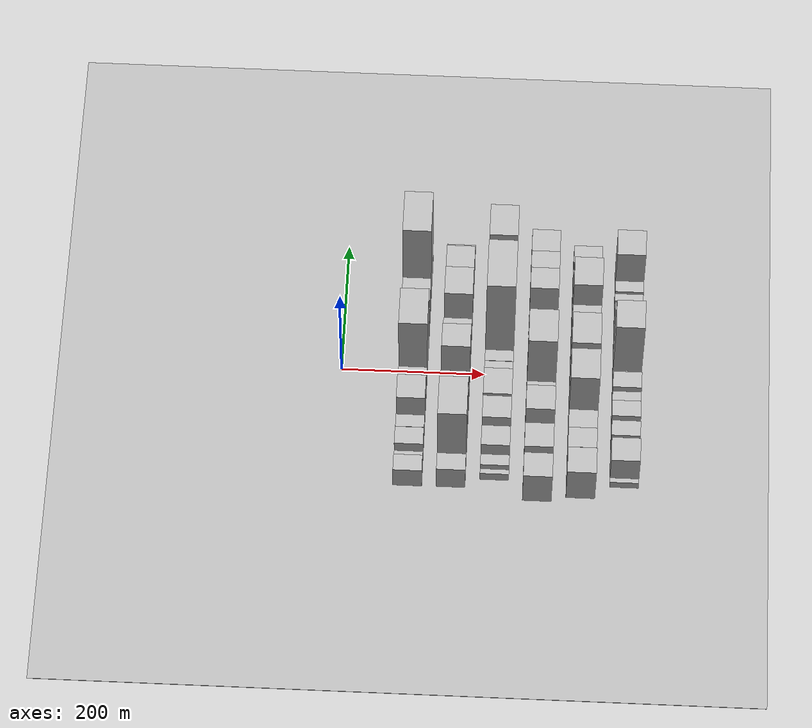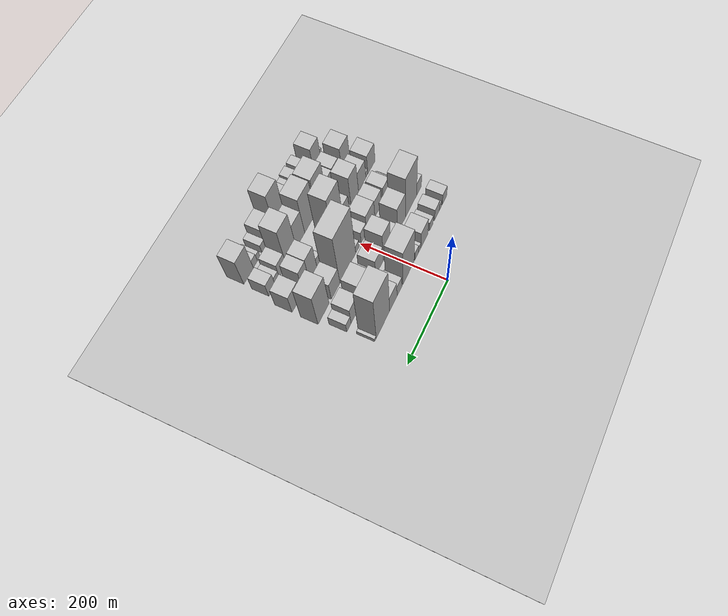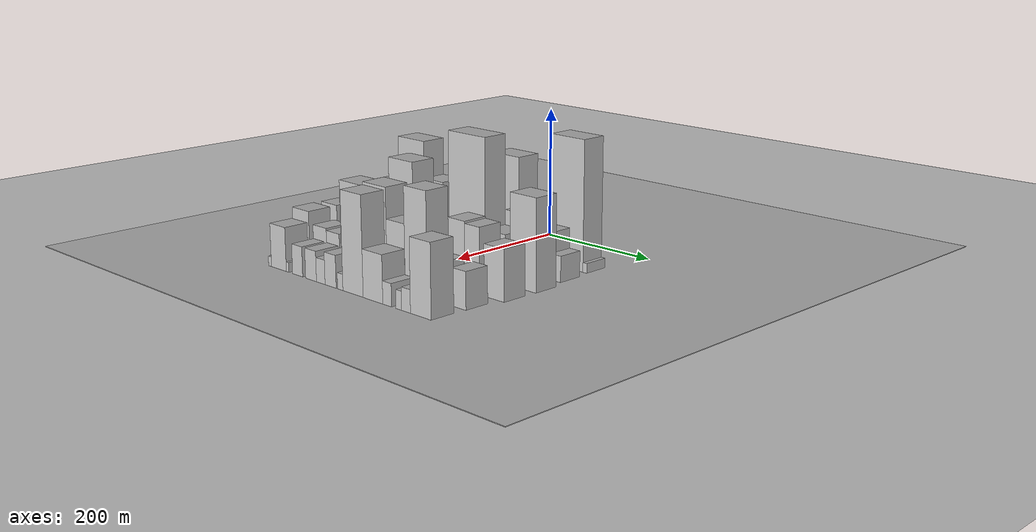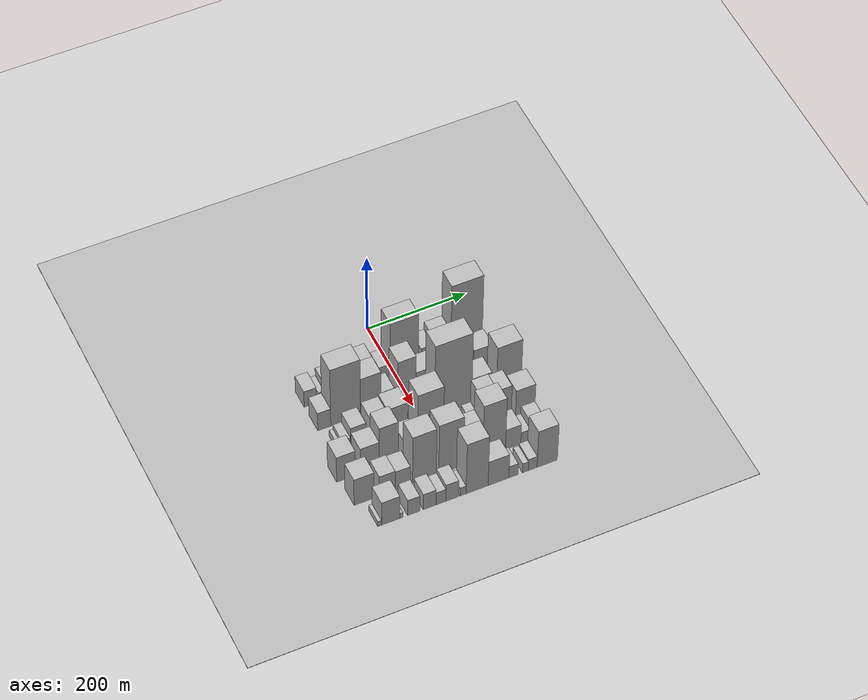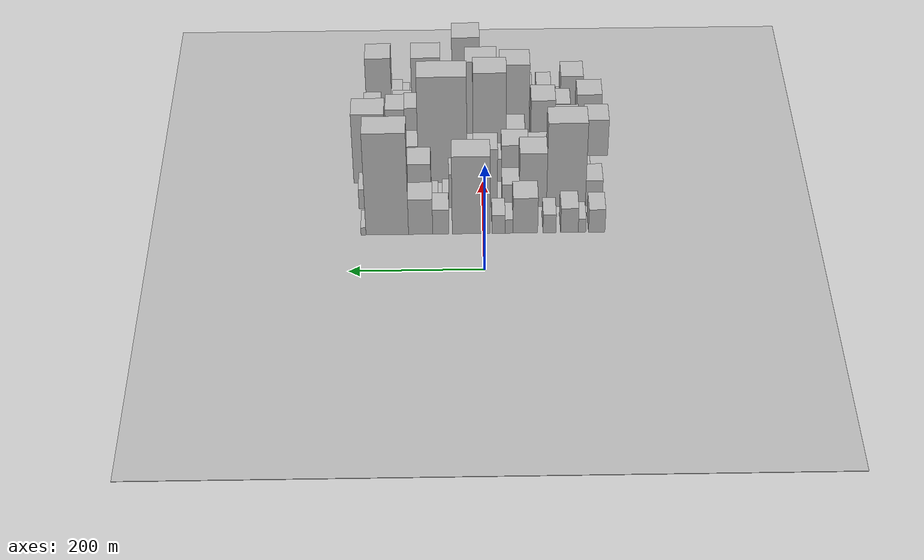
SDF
<sdf version="1.6">
 <world name="default">
  <include><name>ground_plane_1</name><uri>model://HANNAS_ground_plane</uri></include>
  <include>
   <name>ground_plane_2</name>
   <uri>model://HANNAS_ground_plane</uri>
   <pose>100 0 0  0 0 0</pose>
  </include>
  <model name="building_26">
   <static>1</static>
   <pose>100.0000 -169.0179 0 0.000000 0.000000 0.000000</pose>
   <link name="link">
    <pose>0 0 22.50 0 0 0</pose>
    <collision name="collision"><geometry><box><size>40.0000 24.7308 45.0000</size></box></geometry></collision>
    <visual name="visual">
     <cast_shadows>0</cast_shadows>
     <geometry><box><size>40.0000 24.7308 45.0000</size></box></geometry>
     <material>
      <script>
       <uri>model://HANNAS_wall/materials/scripts</uri>
       <uri>model://HANNAS_wall/materials/textures</uri>
       <name>vrc/HANNAS_wall</name>
      </script>
     </material>
    </visual>
   </link>
  </model>
  <model name="building_27">
   <static>1</static>
   <pose>100.0000 -146.9391 0 0.000000 0.000000 0.000000</pose>
   <link name="link">
    <pose>0 0 13.50 0 0 0</pose>
    <collision name="collision"><geometry><box><size>40.0000 11.4268 27.0000</size></box></geometry></collision>
    <visual name="visual">
     <cast_shadows>0</cast_shadows>
     <geometry><box><size>40.0000 11.4268 27.0000</size></box></geometry>
     <material>
      <script>
       <uri>model://HANNAS_wall/materials/scripts</uri>
       <uri>model://HANNAS_wall/materials/textures</uri>
       <name>vrc/HANNAS_wall</name>
      </script>
     </material>
    </visual>
   </link>
  </model>
  <model name="building_28">
   <static>1</static>
   <pose>100.0000 -128.0139 0 0.000000 0.000000 0.000000</pose>
   <link name="link">
    <pose>0 0 24.00 0 0 0</pose>
    <collision name="collision"><geometry><box><size>40.0000 26.4236 48.0000</size></box></geometry></collision>
    <visual name="visual">
     <cast_shadows>0</cast_shadows>
     <geometry><box><size>40.0000 26.4236 48.0000</size></box></geometry>
     <material>
      <script>
       <uri>model://HANNAS_wall/materials/scripts</uri>
       <uri>model://HANNAS_wall/materials/textures</uri>
       <name>vrc/HANNAS_wall</name>
      </script>
     </material>
    </visual>
   </link>
  </model>
  <model name="building_29">
   <static>1</static>
   <pose>100.0000 -98.0934 0 0.000000 0.000000 0.000000</pose>
   <link name="link">
    <pose>0 0 18.00 0 0 0</pose>
    <collision name="collision"><geometry><box><size>40.0000 19.4174 36.0000</size></box></geometry></collision>
    <visual name="visual">
     <cast_shadows>0</cast_shadows>
     <geometry><box><size>40.0000 19.4174 36.0000</size></box></geometry>
     <material>
      <script>
       <uri>model://HANNAS_wall/materials/scripts</uri>
       <uri>model://HANNAS_wall/materials/textures</uri>
       <name>vrc/HANNAS_wall</name>
      </script>
     </material>
    </visual>
   </link>
  </model>
  <model name="building_30">
   <static>1</static>
   <pose>100.0000 -61.7897 0 0.000000 0.000000 0.000000</pose>
   <link name="link">
    <pose>0 0 34.50 0 0 0</pose>
    <collision name="collision"><geometry><box><size>40.0000 37.1900 69.0000</size></box></geometry></collision>
    <visual name="visual">
     <cast_shadows>0</cast_shadows>
     <geometry><box><size>40.0000 37.1900 69.0000</size></box></geometry>
     <material>
      <script>
       <uri>model://HANNAS_wall/materials/scripts</uri>
       <uri>model://HANNAS_wall/materials/textures</uri>
       <name>vrc/HANNAS_wall</name>
      </script>
     </material>
    </visual>
   </link>
  </model>
  <model name="building_31">
   <static>1</static>
   <pose>100.0000 -37.3304 0 0.000000 0.000000 0.000000</pose>
   <link name="link">
    <pose>0 0 13.50 0 0 0</pose>
    <collision name="collision"><geometry><box><size>40.0000 11.7286 27.0000</size></box></geometry></collision>
    <visual name="visual">
     <cast_shadows>0</cast_shadows>
     <geometry><box><size>40.0000 11.7286 27.0000</size></box></geometry>
     <material>
      <script>
       <uri>model://HANNAS_wall/materials/scripts</uri>
       <uri>model://HANNAS_wall/materials/textures</uri>
       <name>vrc/HANNAS_wall</name>
      </script>
     </material>
    </visual>
   </link>
  </model>
  <model name="building_32">
   <static>1</static>
   <pose>100.0000 -21.6655 0 0.000000 0.000000 0.000000</pose>
   <link name="link">
    <pose>0 0 18.00 0 0 0</pose>
    <collision name="collision"><geometry><box><size>40.0000 19.6011 36.0000</size></box></geometry></collision>
    <visual name="visual">
     <cast_shadows>0</cast_shadows>
     <geometry><box><size>40.0000 19.6011 36.0000</size></box></geometry>
     <material>
      <script>
       <uri>model://HANNAS_wall/materials/scripts</uri>
       <uri>model://HANNAS_wall/materials/textures</uri>
       <name>vrc/HANNAS_wall</name>
      </script>
     </material>
    </visual>
   </link>
  </model>
  <model name="building_33">
   <static>1</static>
   <pose>100.0000 19.4667 0 0.000000 0.000000 0.000000</pose>
   <link name="link">
    <pose>0 0 75.00 0 0 0</pose>
    <collision name="collision"><geometry><box><size>40.0000 56.6632 150.0000</size></box></geometry></collision>
    <visual name="visual">
     <cast_shadows>0</cast_shadows>
     <geometry><box><size>40.0000 56.6632 150.0000</size></box></geometry>
     <material>
      <script>
       <uri>model://HANNAS_wall/materials/scripts</uri>
       <uri>model://HANNAS_wall/materials/textures</uri>
       <name>vrc/HANNAS_wall</name>
      </script>
     </material>
    </visual>
   </link>
  </model>
  <model name="building_34">
   <static>1</static>
   <pose>100.0000 64.9660 0 0.000000 0.000000 0.000000</pose>
   <link name="link">
    <pose>0 0 24.00 0 0 0</pose>
    <collision name="collision"><geometry><box><size>40.0000 24.3354 48.0000</size></box></geometry></collision>
    <visual name="visual">
     <cast_shadows>0</cast_shadows>
     <geometry><box><size>40.0000 24.3354 48.0000</size></box></geometry>
     <material>
      <script>
       <uri>model://HANNAS_wall/materials/scripts</uri>
       <uri>model://HANNAS_wall/materials/textures</uri>
       <name>vrc/HANNAS_wall</name>
      </script>
     </material>
    </visual>
   </link>
  </model>
  <model name="building_35">
   <static>1</static>
   <pose>100.0000 95.2352 0 0.000000 0.000000 0.000000</pose>
   <link name="link">
    <pose>0 0 34.50 0 0 0</pose>
    <collision name="collision"><geometry><box><size>40.0000 36.2030 69.0000</size></box></geometry></collision>
    <visual name="visual">
     <cast_shadows>0</cast_shadows>
     <geometry><box><size>40.0000 36.2030 69.0000</size></box></geometry>
     <material>
      <script>
       <uri>model://HANNAS_wall/materials/scripts</uri>
       <uri>model://HANNAS_wall/materials/textures</uri>
       <name>vrc/HANNAS_wall</name>
      </script>
     </material>
    </visual>
   </link>
  </model>
  <model name="building_36">
   <static>1</static>
   <pose>100.0000 145.2437 0 0.000000 0.000000 0.000000</pose>
   <link name="link">
    <pose>0 0 97.50 0 0 0</pose>
    <collision name="collision"><geometry><box><size>40.0000 63.8139 195.0000</size></box></geometry></collision>
    <visual name="visual">
     <cast_shadows>0</cast_shadows>
     <geometry><box><size>40.0000 63.8139 195.0000</size></box></geometry>
     <material>
      <script>
       <uri>model://HANNAS_wall/materials/scripts</uri>
       <uri>model://HANNAS_wall/materials/textures</uri>
       <name>vrc/HANNAS_wall</name>
      </script>
     </material>
    </visual>
   </link>
  </model>
  <model name="building_37">
   <static>1</static>
   <pose>100.0000 180.8640 0 0.000000 0.000000 0.000000</pose>
   <link name="link">
    <pose>0 0 7.50 0 0 0</pose>
    <collision name="collision"><geometry><box><size>40.0000 7.4268 15.0000</size></box></geometry></collision>
    <visual name="visual">
     <cast_shadows>0</cast_shadows>
     <geometry><box><size>40.0000 7.4268 15.0000</size></box></geometry>
     <material>
      <script>
       <uri>model://HANNAS_wall/materials/scripts</uri>
       <uri>model://HANNAS_wall/materials/textures</uri>
       <name>vrc/HANNAS_wall</name>
      </script>
     </material>
    </visual>
   </link>
  </model>
  <model name="building_87">
   <static>1</static>
   <pose>160.0000 -168.0349 0 0.000000 0.000000 0.000000</pose>
   <link name="link">
    <pose>0 0 25.50 0 0 0</pose>
    <collision name="collision"><geometry><box><size>40.0000 25.6597 51.0000</size></box></geometry></collision>
    <visual name="visual">
     <cast_shadows>0</cast_shadows>
     <geometry><box><size>40.0000 25.6597 51.0000</size></box></geometry>
     <material>
      <script>
       <uri>model://HANNAS_wall/materials/scripts</uri>
       <uri>model://HANNAS_wall/materials/textures</uri>
       <name>vrc/HANNAS_wall</name>
      </script>
     </material>
    </visual>
   </link>
  </model>
  <model name="building_88">
   <static>1</static>
   <pose>160.0000 -125.6366 0 0.000000 0.000000 0.000000</pose>
   <link name="link">
    <pose>0 0 81.00 0 0 0</pose>
    <collision name="collision"><geometry><box><size>40.0000 59.1368 162.0000</size></box></geometry></collision>
    <visual name="visual">
     <cast_shadows>0</cast_shadows>
     <geometry><box><size>40.0000 59.1368 162.0000</size></box></geometry>
     <material>
      <script>
       <uri>model://HANNAS_wall/materials/scripts</uri>
       <uri>model://HANNAS_wall/materials/textures</uri>
       <name>vrc/HANNAS_wall</name>
      </script>
     </material>
    </visual>
   </link>
  </model>
  <model name="building_89">
   <static>1</static>
   <pose>160.0000 -75.3803 0 0.000000 0.000000 0.000000</pose>
   <link name="link">
    <pose>0 0 52.50 0 0 0</pose>
    <collision name="collision"><geometry><box><size>40.0000 41.3759 105.0000</size></box></geometry></collision>
    <visual name="visual">
     <cast_shadows>0</cast_shadows>
     <geometry><box><size>40.0000 41.3759 105.0000</size></box></geometry>
     <material>
      <script>
       <uri>model://HANNAS_wall/materials/scripts</uri>
       <uri>model://HANNAS_wall/materials/textures</uri>
       <name>vrc/HANNAS_wall</name>
      </script>
     </material>
    </visual>
   </link>
  </model>
  <model name="building_90">
   <static>1</static>
   <pose>160.0000 -41.4939 0 0.000000 0.000000 0.000000</pose>
   <link name="link">
    <pose>0 0 22.50 0 0 0</pose>
    <collision name="collision"><geometry><box><size>40.0000 26.3967 45.0000</size></box></geometry></collision>
    <visual name="visual">
     <cast_shadows>0</cast_shadows>
     <geometry><box><size>40.0000 26.3967 45.0000</size></box></geometry>
     <material>
      <script>
       <uri>model://HANNAS_wall/materials/scripts</uri>
       <uri>model://HANNAS_wall/materials/textures</uri>
       <name>vrc/HANNAS_wall</name>
      </script>
     </material>
    </visual>
   </link>
  </model>
  <model name="building_91">
   <static>1</static>
   <pose>160.0000 -3.0818 0 0.000000 0.000000 0.000000</pose>
   <link name="link">
    <pose>0 0 57.00 0 0 0</pose>
    <collision name="collision"><geometry><box><size>40.0000 36.4276 114.0000</size></box></geometry></collision>
    <visual name="visual">
     <cast_shadows>0</cast_shadows>
     <geometry><box><size>40.0000 36.4276 114.0000</size></box></geometry>
     <material>
      <script>
       <uri>model://HANNAS_wall/materials/scripts</uri>
       <uri>model://HANNAS_wall/materials/textures</uri>
       <name>vrc/HANNAS_wall</name>
      </script>
     </material>
    </visual>
   </link>
  </model>
  <model name="building_92">
   <static>1</static>
   <pose>160.0000 33.6995 0 0.000000 0.000000 0.000000</pose>
   <link name="link">
    <pose>0 0 33.00 0 0 0</pose>
    <collision name="collision"><geometry><box><size>40.0000 37.1349 66.0000</size></box></geometry></collision>
    <visual name="visual">
     <cast_shadows>0</cast_shadows>
     <geometry><box><size>40.0000 37.1349 66.0000</size></box></geometry>
     <material>
      <script>
       <uri>model://HANNAS_wall/materials/scripts</uri>
       <uri>model://HANNAS_wall/materials/textures</uri>
       <name>vrc/HANNAS_wall</name>
      </script>
     </material>
    </visual>
   </link>
  </model>
  <model name="building_93">
   <static>1</static>
   <pose>160.0000 57.2127 0 0.000000 0.000000 0.000000</pose>
   <link name="link">
    <pose>0 0 12.00 0 0 0</pose>
    <collision name="collision"><geometry><box><size>40.0000 9.8915 24.0000</size></box></geometry></collision>
    <visual name="visual">
     <cast_shadows>0</cast_shadows>
     <geometry><box><size>40.0000 9.8915 24.0000</size></box></geometry>
     <material>
      <script>
       <uri>model://HANNAS_wall/materials/scripts</uri>
       <uri>model://HANNAS_wall/materials/textures</uri>
       <name>vrc/HANNAS_wall</name>
      </script>
     </material>
    </visual>
   </link>
  </model>
  <model name="building_94">
   <static>1</static>
   <pose>160.0000 74.1878 0 0.000000 0.000000 0.000000</pose>
   <link name="link">
    <pose>0 0 10.50 0 0 0</pose>
    <collision name="collision"><geometry><box><size>40.0000 10.0588 21.0000</size></box></geometry></collision>
    <visual name="visual">
     <cast_shadows>0</cast_shadows>
     <geometry><box><size>40.0000 10.0588 21.0000</size></box></geometry>
     <material>
      <script>
       <uri>model://HANNAS_wall/materials/scripts</uri>
       <uri>model://HANNAS_wall/materials/textures</uri>
       <name>vrc/HANNAS_wall</name>
      </script>
     </material>
    </visual>
   </link>
  </model>
  <model name="building_95">
   <static>1</static>
   <pose>160.0000 101.2545 0 0.000000 0.000000 0.000000</pose>
   <link name="link">
    <pose>0 0 43.50 0 0 0</pose>
    <collision name="collision"><geometry><box><size>40.0000 44.0746 87.0000</size></box></geometry></collision>
    <visual name="visual">
     <cast_shadows>0</cast_shadows>
     <geometry><box><size>40.0000 44.0746 87.0000</size></box></geometry>
     <material>
      <script>
       <uri>model://HANNAS_wall/materials/scripts</uri>
       <uri>model://HANNAS_wall/materials/textures</uri>
       <name>vrc/HANNAS_wall</name>
      </script>
     </material>
    </visual>
   </link>
  </model>
  <model name="building_96">
   <static>1</static>
   <pose>160.0000 150.2323 0 0.000000 0.000000 0.000000</pose>
   <link name="link">
    <pose>0 0 34.50 0 0 0</pose>
    <collision name="collision"><geometry><box><size>40.0000 37.8811 69.0000</size></box></geometry></collision>
    <visual name="visual">
     <cast_shadows>0</cast_shadows>
     <geometry><box><size>40.0000 37.8811 69.0000</size></box></geometry>
     <material>
      <script>
       <uri>model://HANNAS_wall/materials/scripts</uri>
       <uri>model://HANNAS_wall/materials/textures</uri>
       <name>vrc/HANNAS_wall</name>
      </script>
     </material>
    </visual>
   </link>
  </model>
  <model name="building_97">
   <static>1</static>
   <pose>160.0000 179.1485 0 0.000000 0.000000 0.000000</pose>
   <link name="link">
    <pose>0 0 19.50 0 0 0</pose>
    <collision name="collision"><geometry><box><size>40.0000 19.9514 39.0000</size></box></geometry></collision>
    <visual name="visual">
     <cast_shadows>0</cast_shadows>
     <geometry><box><size>40.0000 19.9514 39.0000</size></box></geometry>
     <material>
      <script>
       <uri>model://HANNAS_wall/materials/scripts</uri>
       <uri>model://HANNAS_wall/materials/textures</uri>
       <name>vrc/HANNAS_wall</name>
      </script>
     </material>
    </visual>
   </link>
  </model>
  <model name="building_145">
   <static>1</static>
   <pose>220.0000 -163.3098 0 0.000000 0.000000 0.000000</pose>
   <link name="link">
    <pose>0 0 9.00 0 0 0</pose>
    <collision name="collision"><geometry><box><size>40.0000 7.3549 18.0000</size></box></geometry></collision>
    <visual name="visual">
     <cast_shadows>0</cast_shadows>
     <geometry><box><size>40.0000 7.3549 18.0000</size></box></geometry>
     <material>
      <script>
       <uri>model://HANNAS_wall/materials/scripts</uri>
       <uri>model://HANNAS_wall/materials/textures</uri>
       <name>vrc/HANNAS_wall</name>
      </script>
     </material>
    </visual>
   </link>
  </model>
  <model name="building_146">
   <static>1</static>
   <pose>220.0000 -151.2344 0 0.000000 0.000000 0.000000</pose>
   <link name="link">
    <pose>0 0 15.00 0 0 0</pose>
    <collision name="collision"><geometry><box><size>40.0000 16.7961 30.0000</size></box></geometry></collision>
    <visual name="visual">
     <cast_shadows>0</cast_shadows>
     <geometry><box><size>40.0000 16.7961 30.0000</size></box></geometry>
     <material>
      <script>
       <uri>model://HANNAS_wall/materials/scripts</uri>
       <uri>model://HANNAS_wall/materials/textures</uri>
       <name>vrc/HANNAS_wall</name>
      </script>
     </material>
    </visual>
   </link>
  </model>
  <model name="building_147">
   <static>1</static>
   <pose>220.0000 -127.4929 0 0.000000 0.000000 0.000000</pose>
   <link name="link">
    <pose>0 0 28.50 0 0 0</pose>
    <collision name="collision"><geometry><box><size>40.0000 30.6869 57.0000</size></box></geometry></collision>
    <visual name="visual">
     <cast_shadows>0</cast_shadows>
     <geometry><box><size>40.0000 30.6869 57.0000</size></box></geometry>
     <material>
      <script>
       <uri>model://HANNAS_wall/materials/scripts</uri>
       <uri>model://HANNAS_wall/materials/textures</uri>
       <name>vrc/HANNAS_wall</name>
      </script>
     </material>
    </visual>
   </link>
  </model>
  <model name="building_148">
   <static>1</static>
   <pose>220.0000 -87.0255 0 0.000000 0.000000 0.000000</pose>
   <link name="link">
    <pose>0 0 33.00 0 0 0</pose>
    <collision name="collision"><geometry><box><size>40.0000 34.2478 66.0000</size></box></geometry></collision>
    <visual name="visual">
     <cast_shadows>0</cast_shadows>
     <geometry><box><size>40.0000 34.2478 66.0000</size></box></geometry>
     <material>
      <script>
       <uri>model://HANNAS_wall/materials/scripts</uri>
       <uri>model://HANNAS_wall/materials/textures</uri>
       <name>vrc/HANNAS_wall</name>
      </script>
     </material>
    </visual>
   </link>
  </model>
  <model name="building_149">
   <static>1</static>
   <pose>220.0000 -49.4618 0 0.000000 0.000000 0.000000</pose>
   <link name="link">
    <pose>0 0 36.00 0 0 0</pose>
    <collision name="collision"><geometry><box><size>40.0000 40.8796 72.0000</size></box></geometry></collision>
    <visual name="visual">
     <cast_shadows>0</cast_shadows>
     <geometry><box><size>40.0000 40.8796 72.0000</size></box></geometry>
     <material>
      <script>
       <uri>model://HANNAS_wall/materials/scripts</uri>
       <uri>model://HANNAS_wall/materials/textures</uri>
       <name>vrc/HANNAS_wall</name>
      </script>
     </material>
    </visual>
   </link>
  </model>
  <model name="building_150">
   <static>1</static>
   <pose>220.0000 -15.7510 0 0.000000 0.000000 0.000000</pose>
   <link name="link">
    <pose>0 0 22.50 0 0 0</pose>
    <collision name="collision"><geometry><box><size>40.0000 26.5421 45.0000</size></box></geometry></collision>
    <visual name="visual">
     <cast_shadows>0</cast_shadows>
     <geometry><box><size>40.0000 26.5421 45.0000</size></box></geometry>
     <material>
      <script>
       <uri>model://HANNAS_wall/materials/scripts</uri>
       <uri>model://HANNAS_wall/materials/textures</uri>
       <name>vrc/HANNAS_wall</name>
      </script>
     </material>
    </visual>
   </link>
  </model>
  <model name="building_151">
   <static>1</static>
   <pose>220.0000 15.3387 0 0.000000 0.000000 0.000000</pose>
   <link name="link">
    <pose>0 0 15.00 0 0 0</pose>
    <collision name="collision"><geometry><box><size>40.0000 17.6374 30.0000</size></box></geometry></collision>
    <visual name="visual">
     <cast_shadows>0</cast_shadows>
     <geometry><box><size>40.0000 17.6374 30.0000</size></box></geometry>
     <material>
      <script>
       <uri>model://HANNAS_wall/materials/scripts</uri>
       <uri>model://HANNAS_wall/materials/textures</uri>
       <name>vrc/HANNAS_wall</name>
      </script>
     </material>
    </visual>
   </link>
  </model>
  <model name="building_152">
   <static>1</static>
   <pose>220.0000 61.5165 0 0.000000 0.000000 0.000000</pose>
   <link name="link">
    <pose>0 0 102.00 0 0 0</pose>
    <collision name="collision"><geometry><box><size>40.0000 74.7181 204.0000</size></box></geometry></collision>
    <visual name="visual">
     <cast_shadows>0</cast_shadows>
     <geometry><box><size>40.0000 74.7181 204.0000</size></box></geometry>
     <material>
      <script>
       <uri>model://HANNAS_wall/materials/scripts</uri>
       <uri>model://HANNAS_wall/materials/textures</uri>
       <name>vrc/HANNAS_wall</name>
      </script>
     </material>
    </visual>
   </link>
  </model>
  <model name="building_153">
   <static>1</static>
   <pose>220.0000 118.8169 0 0.000000 0.000000 0.000000</pose>
   <link name="link">
    <pose>0 0 36.00 0 0 0</pose>
    <collision name="collision"><geometry><box><size>40.0000 39.8826 72.0000</size></box></geometry></collision>
    <visual name="visual">
     <cast_shadows>0</cast_shadows>
     <geometry><box><size>40.0000 39.8826 72.0000</size></box></geometry>
     <material>
      <script>
       <uri>model://HANNAS_wall/materials/scripts</uri>
       <uri>model://HANNAS_wall/materials/textures</uri>
       <name>vrc/HANNAS_wall</name>
      </script>
     </material>
    </visual>
   </link>
  </model>
  <model name="building_154">
   <static>1</static>
   <pose>220.0000 173.7922 0 0.000000 0.000000 0.000000</pose>
   <link name="link">
    <pose>0 0 67.50 0 0 0</pose>
    <collision name="collision"><geometry><box><size>40.0000 50.0681 135.0000</size></box></geometry></collision>
    <visual name="visual">
     <cast_shadows>0</cast_shadows>
     <geometry><box><size>40.0000 50.0681 135.0000</size></box></geometry>
     <material>
      <script>
       <uri>model://HANNAS_wall/materials/scripts</uri>
       <uri>model://HANNAS_wall/materials/textures</uri>
       <name>vrc/HANNAS_wall</name>
      </script>
     </material>
    </visual>
   </link>
  </model>
  <model name="building_195">
   <static>1</static>
   <pose>280.0000 -178.7879 0 0.000000 0.000000 0.000000</pose>
   <link name="link">
    <pose>0 0 36.00 0 0 0</pose>
    <collision name="collision"><geometry><box><size>40.0000 37.0786 72.0000</size></box></geometry></collision>
    <visual name="visual">
     <cast_shadows>0</cast_shadows>
     <geometry><box><size>40.0000 37.0786 72.0000</size></box></geometry>
     <material>
      <script>
       <uri>model://HANNAS_wall/materials/scripts</uri>
       <uri>model://HANNAS_wall/materials/textures</uri>
       <name>vrc/HANNAS_wall</name>
      </script>
     </material>
    </visual>
   </link>
  </model>
  <model name="building_196">
   <static>1</static>
   <pose>280.0000 -155.4807 0 0.000000 0.000000 0.000000</pose>
   <link name="link">
    <pose>0 0 10.50 0 0 0</pose>
    <collision name="collision"><geometry><box><size>40.0000 9.5356 21.0000</size></box></geometry></collision>
    <visual name="visual">
     <cast_shadows>0</cast_shadows>
     <geometry><box><size>40.0000 9.5356 21.0000</size></box></geometry>
     <material>
      <script>
       <uri>model://HANNAS_wall/materials/scripts</uri>
       <uri>model://HANNAS_wall/materials/textures</uri>
       <name>vrc/HANNAS_wall</name>
      </script>
     </material>
    </visual>
   </link>
  </model>
  <model name="building_197">
   <static>1</static>
   <pose>280.0000 -132.0452 0 0.000000 0.000000 0.000000</pose>
   <link name="link">
    <pose>0 0 36.00 0 0 0</pose>
    <collision name="collision"><geometry><box><size>40.0000 37.3354 72.0000</size></box></geometry></collision>
    <visual name="visual">
     <cast_shadows>0</cast_shadows>
     <geometry><box><size>40.0000 37.3354 72.0000</size></box></geometry>
     <material>
      <script>
       <uri>model://HANNAS_wall/materials/scripts</uri>
       <uri>model://HANNAS_wall/materials/textures</uri>
       <name>vrc/HANNAS_wall</name>
      </script>
     </material>
    </visual>
   </link>
  </model>
  <model name="building_198">
   <static>1</static>
   <pose>280.0000 -94.6000 0 0.000000 0.000000 0.000000</pose>
   <link name="link">
    <pose>0 0 55.50 0 0 0</pose>
    <collision name="collision"><geometry><box><size>40.0000 37.5550 111.0000</size></box></geometry></collision>
    <visual name="visual">
     <cast_shadows>0</cast_shadows>
     <geometry><box><size>40.0000 37.5550 111.0000</size></box></geometry>
     <material>
      <script>
       <uri>model://HANNAS_wall/materials/scripts</uri>
       <uri>model://HANNAS_wall/materials/textures</uri>
       <name>vrc/HANNAS_wall</name>
      </script>
     </material>
    </visual>
   </link>
  </model>
  <model name="building_199">
   <static>1</static>
   <pose>280.0000 -52.1125 0 0.000000 0.000000 0.000000</pose>
   <link name="link">
    <pose>0 0 27.00 0 0 0</pose>
    <collision name="collision"><geometry><box><size>40.0000 29.4200 54.0000</size></box></geometry></collision>
    <visual name="visual">
     <cast_shadows>0</cast_shadows>
     <geometry><box><size>40.0000 29.4200 54.0000</size></box></geometry>
     <material>
      <script>
       <uri>model://HANNAS_wall/materials/scripts</uri>
       <uri>model://HANNAS_wall/materials/textures</uri>
       <name>vrc/HANNAS_wall</name>
      </script>
     </material>
    </visual>
   </link>
  </model>
  <model name="building_200">
   <static>1</static>
   <pose>280.0000 -11.7495 0 0.000000 0.000000 0.000000</pose>
   <link name="link">
    <pose>0 0 82.50 0 0 0</pose>
    <collision name="collision"><geometry><box><size>40.0000 51.3061 165.0000</size></box></geometry></collision>
    <visual name="visual">
     <cast_shadows>0</cast_shadows>
     <geometry><box><size>40.0000 51.3061 165.0000</size></box></geometry>
     <material>
      <script>
       <uri>model://HANNAS_wall/materials/scripts</uri>
       <uri>model://HANNAS_wall/materials/textures</uri>
       <name>vrc/HANNAS_wall</name>
      </script>
     </material>
    </visual>
   </link>
  </model>
  <model name="building_201">
   <static>1</static>
   <pose>280.0000 76.9945 0 0.000000 0.000000 0.000000</pose>
   <link name="link">
    <pose>0 0 18.00 0 0 0</pose>
    <collision name="collision"><geometry><box><size>40.0000 18.7273 36.0000</size></box></geometry></collision>
    <visual name="visual">
     <cast_shadows>0</cast_shadows>
     <geometry><box><size>40.0000 18.7273 36.0000</size></box></geometry>
     <material>
      <script>
       <uri>model://HANNAS_wall/materials/scripts</uri>
       <uri>model://HANNAS_wall/materials/textures</uri>
       <name>vrc/HANNAS_wall</name>
      </script>
     </material>
    </visual>
   </link>
  </model>
  <model name="building_202">
   <static>1</static>
   <pose>280.0000 103.2884 0 0.000000 0.000000 0.000000</pose>
   <link name="link">
    <pose>0 0 49.50 0 0 0</pose>
    <collision name="collision"><geometry><box><size>40.0000 33.8603 99.0000</size></box></geometry></collision>
    <visual name="visual">
     <cast_shadows>0</cast_shadows>
     <geometry><box><size>40.0000 33.8603 99.0000</size></box></geometry>
     <material>
      <script>
       <uri>model://HANNAS_wall/materials/scripts</uri>
       <uri>model://HANNAS_wall/materials/textures</uri>
       <name>vrc/HANNAS_wall</name>
      </script>
     </material>
    </visual>
   </link>
  </model>
  <model name="building_203">
   <static>1</static>
   <pose>280.0000 134.7849 0 0.000000 0.000000 0.000000</pose>
   <link name="link">
    <pose>0 0 48.00 0 0 0</pose>
    <collision name="collision"><geometry><box><size>40.0000 29.1326 96.0000</size></box></geometry></collision>
    <visual name="visual">
     <cast_shadows>0</cast_shadows>
     <geometry><box><size>40.0000 29.1326 96.0000</size></box></geometry>
     <material>
      <script>
       <uri>model://HANNAS_wall/materials/scripts</uri>
       <uri>model://HANNAS_wall/materials/textures</uri>
       <name>vrc/HANNAS_wall</name>
      </script>
     </material>
    </visual>
   </link>
  </model>
  <model name="building_204">
   <static>1</static>
   <pose>280.0000 177.8901 0 0.000000 0.000000 0.000000</pose>
   <link name="link">
    <pose>0 0 37.50 0 0 0</pose>
    <collision name="collision"><geometry><box><size>40.0000 39.0778 75.0000</size></box></geometry></collision>
    <visual name="visual">
     <cast_shadows>0</cast_shadows>
     <geometry><box><size>40.0000 39.0778 75.0000</size></box></geometry>
     <material>
      <script>
       <uri>model://HANNAS_wall/materials/scripts</uri>
       <uri>model://HANNAS_wall/materials/textures</uri>
       <name>vrc/HANNAS_wall</name>
      </script>
     </material>
    </visual>
   </link>
  </model>
  <model name="building_250">
   <static>1</static>
   <pose>340.0000 -170.4119 0 0.000000 0.000000 0.000000</pose>
   <link name="link">
    <pose>0 0 37.50 0 0 0</pose>
    <collision name="collision"><geometry><box><size>40.0000 39.3028 75.0000</size></box></geometry></collision>
    <visual name="visual">
     <cast_shadows>0</cast_shadows>
     <geometry><box><size>40.0000 39.3028 75.0000</size></box></geometry>
     <material>
      <script>
       <uri>model://HANNAS_wall/materials/scripts</uri>
       <uri>model://HANNAS_wall/materials/textures</uri>
       <name>vrc/HANNAS_wall</name>
      </script>
     </material>
    </visual>
   </link>
  </model>
  <model name="building_251">
   <static>1</static>
   <pose>340.0000 -125.1988 0 0.000000 0.000000 0.000000</pose>
   <link name="link">
    <pose>0 0 28.50 0 0 0</pose>
    <collision name="collision"><geometry><box><size>40.0000 31.1235 57.0000</size></box></geometry></collision>
    <visual name="visual">
     <cast_shadows>0</cast_shadows>
     <geometry><box><size>40.0000 31.1235 57.0000</size></box></geometry>
     <material>
      <script>
       <uri>model://HANNAS_wall/materials/scripts</uri>
       <uri>model://HANNAS_wall/materials/textures</uri>
       <name>vrc/HANNAS_wall</name>
      </script>
     </material>
    </visual>
   </link>
  </model>
  <model name="building_252">
   <static>1</static>
   <pose>340.0000 -94.6533 0 0.000000 0.000000 0.000000</pose>
   <link name="link">
    <pose>0 0 27.00 0 0 0</pose>
    <collision name="collision"><geometry><box><size>40.0000 29.9676 54.0000</size></box></geometry></collision>
    <visual name="visual">
     <cast_shadows>0</cast_shadows>
     <geometry><box><size>40.0000 29.9676 54.0000</size></box></geometry>
     <material>
      <script>
       <uri>model://HANNAS_wall/materials/scripts</uri>
       <uri>model://HANNAS_wall/materials/textures</uri>
       <name>vrc/HANNAS_wall</name>
      </script>
     </material>
    </visual>
   </link>
  </model>
  <model name="building_253">
   <static>1</static>
   <pose>340.0000 -52.1348 0 0.000000 0.000000 0.000000</pose>
   <link name="link">
    <pose>0 0 67.50 0 0 0</pose>
    <collision name="collision"><geometry><box><size>40.0000 47.0694 135.0000</size></box></geometry></collision>
    <visual name="visual">
     <cast_shadows>0</cast_shadows>
     <geometry><box><size>40.0000 47.0694 135.0000</size></box></geometry>
     <material>
      <script>
       <uri>model://HANNAS_wall/materials/scripts</uri>
       <uri>model://HANNAS_wall/materials/textures</uri>
       <name>vrc/HANNAS_wall</name>
      </script>
     </material>
    </visual>
   </link>
  </model>
  <model name="building_254">
   <static>1</static>
   <pose>340.0000 1.0089 0 0.000000 0.000000 0.000000</pose>
   <link name="link">
    <pose>0 0 70.50 0 0 0</pose>
    <collision name="collision"><geometry><box><size>40.0000 49.2179 141.0000</size></box></geometry></collision>
    <visual name="visual">
     <cast_shadows>0</cast_shadows>
     <geometry><box><size>40.0000 49.2179 141.0000</size></box></geometry>
     <material>
      <script>
       <uri>model://HANNAS_wall/materials/scripts</uri>
       <uri>model://HANNAS_wall/materials/textures</uri>
       <name>vrc/HANNAS_wall</name>
      </script>
     </material>
    </visual>
   </link>
  </model>
  <model name="building_255">
   <static>1</static>
   <pose>340.0000 44.8110 0 0.000000 0.000000 0.000000</pose>
   <link name="link">
    <pose>0 0 48.00 0 0 0</pose>
    <collision name="collision"><geometry><box><size>40.0000 38.3864 96.0000</size></box></geometry></collision>
    <visual name="visual">
     <cast_shadows>0</cast_shadows>
     <geometry><box><size>40.0000 38.3864 96.0000</size></box></geometry>
     <material>
      <script>
       <uri>model://HANNAS_wall/materials/scripts</uri>
       <uri>model://HANNAS_wall/materials/textures</uri>
       <name>vrc/HANNAS_wall</name>
      </script>
     </material>
    </visual>
   </link>
  </model>
  <model name="building_256">
   <static>1</static>
   <pose>340.0000 86.5662 0 0.000000 0.000000 0.000000</pose>
   <link name="link">
    <pose>0 0 75.00 0 0 0</pose>
    <collision name="collision"><geometry><box><size>40.0000 45.1239 150.0000</size></box></geometry></collision>
    <visual name="visual">
     <cast_shadows>0</cast_shadows>
     <geometry><box><size>40.0000 45.1239 150.0000</size></box></geometry>
     <material>
      <script>
       <uri>model://HANNAS_wall/materials/scripts</uri>
       <uri>model://HANNAS_wall/materials/textures</uri>
       <name>vrc/HANNAS_wall</name>
      </script>
     </material>
    </visual>
   </link>
  </model>
  <model name="building_257">
   <static>1</static>
   <pose>340.0000 124.5003 0 0.000000 0.000000 0.000000</pose>
   <link name="link">
    <pose>0 0 28.50 0 0 0</pose>
    <collision name="collision"><geometry><box><size>40.0000 30.7444 57.0000</size></box></geometry></collision>
    <visual name="visual">
     <cast_shadows>0</cast_shadows>
     <geometry><box><size>40.0000 30.7444 57.0000</size></box></geometry>
     <material>
      <script>
       <uri>model://HANNAS_wall/materials/scripts</uri>
       <uri>model://HANNAS_wall/materials/textures</uri>
       <name>vrc/HANNAS_wall</name>
      </script>
     </material>
    </visual>
   </link>
  </model>
  <model name="building_258">
   <static>1</static>
   <pose>340.0000 149.1725 0 0.000000 0.000000 0.000000</pose>
   <link name="link">
    <pose>0 0 16.50 0 0 0</pose>
    <collision name="collision"><geometry><box><size>40.0000 18.6000 33.0000</size></box></geometry></collision>
    <visual name="visual">
     <cast_shadows>0</cast_shadows>
     <geometry><box><size>40.0000 18.6000 33.0000</size></box></geometry>
     <material>
      <script>
       <uri>model://HANNAS_wall/materials/scripts</uri>
       <uri>model://HANNAS_wall/materials/textures</uri>
       <name>vrc/HANNAS_wall</name>
      </script>
     </material>
    </visual>
   </link>
  </model>
  <model name="building_259">
   <static>1</static>
   <pose>340.0000 172.1791 0 0.000000 0.000000 0.000000</pose>
   <link name="link">
    <pose>0 0 27.00 0 0 0</pose>
    <collision name="collision"><geometry><box><size>40.0000 27.4131 54.0000</size></box></geometry></collision>
    <visual name="visual">
     <cast_shadows>0</cast_shadows>
     <geometry><box><size>40.0000 27.4131 54.0000</size></box></geometry>
     <material>
      <script>
       <uri>model://HANNAS_wall/materials/scripts</uri>
       <uri>model://HANNAS_wall/materials/textures</uri>
       <name>vrc/HANNAS_wall</name>
      </script>
     </material>
    </visual>
   </link>
  </model>
  <model name="building_304">
   <static>1</static>
   <pose>400.0000 -167.5842 0 0.000000 0.000000 0.000000</pose>
   <link name="link">
    <pose>0 0 7.50 0 0 0</pose>
    <collision name="collision"><geometry><box><size>40.0000 6.9510 15.0000</size></box></geometry></collision>
    <visual name="visual">
     <cast_shadows>0</cast_shadows>
     <geometry><box><size>40.0000 6.9510 15.0000</size></box></geometry>
     <material>
      <script>
       <uri>model://HANNAS_wall/materials/scripts</uri>
       <uri>model://HANNAS_wall/materials/textures</uri>
       <name>vrc/HANNAS_wall</name>
      </script>
     </material>
    </visual>
   </link>
  </model>
  <model name="building_305">
   <static>1</static>
   <pose>400.0000 -146.0588 0 0.000000 0.000000 0.000000</pose>
   <link name="link">
    <pose>0 0 33.00 0 0 0</pose>
    <collision name="collision"><geometry><box><size>40.0000 36.0999 66.0000</size></box></geometry></collision>
    <visual name="visual">
     <cast_shadows>0</cast_shadows>
     <geometry><box><size>40.0000 36.0999 66.0000</size></box></geometry>
     <material>
      <script>
       <uri>model://HANNAS_wall/materials/scripts</uri>
       <uri>model://HANNAS_wall/materials/textures</uri>
       <name>vrc/HANNAS_wall</name>
      </script>
     </material>
    </visual>
   </link>
  </model>
  <model name="building_306">
   <static>1</static>
   <pose>400.0000 -124.9805 0 0.000000 0.000000 0.000000</pose>
   <link name="link">
    <pose>0 0 7.50 0 0 0</pose>
    <collision name="collision"><geometry><box><size>40.0000 6.0566 15.0000</size></box></geometry></collision>
    <visual name="visual">
     <cast_shadows>0</cast_shadows>
     <geometry><box><size>40.0000 6.0566 15.0000</size></box></geometry>
     <material>
      <script>
       <uri>model://HANNAS_wall/materials/scripts</uri>
       <uri>model://HANNAS_wall/materials/textures</uri>
       <name>vrc/HANNAS_wall</name>
      </script>
     </material>
    </visual>
   </link>
  </model>
  <model name="building_307">
   <static>1</static>
   <pose>400.0000 -101.0877 0 0.000000 0.000000 0.000000</pose>
   <link name="link">
    <pose>0 0 22.50 0 0 0</pose>
    <collision name="collision"><geometry><box><size>40.0000 23.7291 45.0000</size></box></geometry></collision>
    <visual name="visual">
     <cast_shadows>0</cast_shadows>
     <geometry><box><size>40.0000 23.7291 45.0000</size></box></geometry>
     <material>
      <script>
       <uri>model://HANNAS_wall/materials/scripts</uri>
       <uri>model://HANNAS_wall/materials/textures</uri>
       <name>vrc/HANNAS_wall</name>
      </script>
     </material>
    </visual>
   </link>
  </model>
  <model name="building_308">
   <static>1</static>
   <pose>400.0000 -69.8056 0 0.000000 0.000000 0.000000</pose>
   <link name="link">
    <pose>0 0 22.50 0 0 0</pose>
    <collision name="collision"><geometry><box><size>40.0000 24.8349 45.0000</size></box></geometry></collision>
    <visual name="visual">
     <cast_shadows>0</cast_shadows>
     <geometry><box><size>40.0000 24.8349 45.0000</size></box></geometry>
     <material>
      <script>
       <uri>model://HANNAS_wall/materials/scripts</uri>
       <uri>model://HANNAS_wall/materials/textures</uri>
       <name>vrc/HANNAS_wall</name>
      </script>
     </material>
    </visual>
   </link>
  </model>
  <model name="building_309">
   <static>1</static>
   <pose>400.0000 -47.6218 0 0.000000 0.000000 0.000000</pose>
   <link name="link">
    <pose>0 0 18.00 0 0 0</pose>
    <collision name="collision"><geometry><box><size>40.0000 19.5327 36.0000</size></box></geometry></collision>
    <visual name="visual">
     <cast_shadows>0</cast_shadows>
     <geometry><box><size>40.0000 19.5327 36.0000</size></box></geometry>
     <material>
      <script>
       <uri>model://HANNAS_wall/materials/scripts</uri>
       <uri>model://HANNAS_wall/materials/textures</uri>
       <name>vrc/HANNAS_wall</name>
      </script>
     </material>
    </visual>
   </link>
  </model>
  <model name="building_310">
   <static>1</static>
   <pose>400.0000 -25.3829 0 0.000000 0.000000 0.000000</pose>
   <link name="link">
    <pose>0 0 24.00 0 0 0</pose>
    <collision name="collision"><geometry><box><size>40.0000 24.9450 48.0000</size></box></geometry></collision>
    <visual name="visual">
     <cast_shadows>0</cast_shadows>
     <geometry><box><size>40.0000 24.9450 48.0000</size></box></geometry>
     <material>
      <script>
       <uri>model://HANNAS_wall/materials/scripts</uri>
       <uri>model://HANNAS_wall/materials/textures</uri>
       <name>vrc/HANNAS_wall</name>
      </script>
     </material>
    </visual>
   </link>
  </model>
  <model name="building_311">
   <static>1</static>
   <pose>400.0000 -3.9680 0 0.000000 0.000000 0.000000</pose>
   <link name="link">
    <pose>0 0 12.00 0 0 0</pose>
    <collision name="collision"><geometry><box><size>40.0000 11.8848 24.0000</size></box></geometry></collision>
    <visual name="visual">
     <cast_shadows>0</cast_shadows>
     <geometry><box><size>40.0000 11.8848 24.0000</size></box></geometry>
     <material>
      <script>
       <uri>model://HANNAS_wall/materials/scripts</uri>
       <uri>model://HANNAS_wall/materials/textures</uri>
       <name>vrc/HANNAS_wall</name>
      </script>
     </material>
    </visual>
   </link>
  </model>
  <model name="building_312">
   <static>1</static>
   <pose>400.0000 23.8719 0 0.000000 0.000000 0.000000</pose>
   <link name="link">
    <pose>0 0 72.00 0 0 0</pose>
    <collision name="collision"><geometry><box><size>40.0000 43.7951 144.0000</size></box></geometry></collision>
    <visual name="visual">
     <cast_shadows>0</cast_shadows>
     <geometry><box><size>40.0000 43.7951 144.0000</size></box></geometry>
     <material>
      <script>
       <uri>model://HANNAS_wall/materials/scripts</uri>
       <uri>model://HANNAS_wall/materials/textures</uri>
       <name>vrc/HANNAS_wall</name>
      </script>
     </material>
    </visual>
   </link>
  </model>
  <model name="building_313">
   <static>1</static>
   <pose>400.0000 66.3827 0 0.000000 0.000000 0.000000</pose>
   <link name="link">
    <pose>0 0 34.50 0 0 0</pose>
    <collision name="collision"><geometry><box><size>40.0000 41.2265 69.0000</size></box></geometry></collision>
    <visual name="visual">
     <cast_shadows>0</cast_shadows>
     <geometry><box><size>40.0000 41.2265 69.0000</size></box></geometry>
     <material>
      <script>
       <uri>model://HANNAS_wall/materials/scripts</uri>
       <uri>model://HANNAS_wall/materials/textures</uri>
       <name>vrc/HANNAS_wall</name>
      </script>
     </material>
    </visual>
   </link>
  </model>
  <model name="building_314">
   <static>1</static>
   <pose>400.0000 95.9991 0 0.000000 0.000000 0.000000</pose>
   <link name="link">
    <pose>0 0 16.50 0 0 0</pose>
    <collision name="collision"><geometry><box><size>40.0000 18.0063 33.0000</size></box></geometry></collision>
    <visual name="visual">
     <cast_shadows>0</cast_shadows>
     <geometry><box><size>40.0000 18.0063 33.0000</size></box></geometry>
     <material>
      <script>
       <uri>model://HANNAS_wall/materials/scripts</uri>
       <uri>model://HANNAS_wall/materials/textures</uri>
       <name>vrc/HANNAS_wall</name>
      </script>
     </material>
    </visual>
   </link>
  </model>
  <model name="building_315">
   <static>1</static>
   <pose>400.0000 119.7303 0 0.000000 0.000000 0.000000</pose>
   <link name="link">
    <pose>0 0 13.50 0 0 0</pose>
    <collision name="collision"><geometry><box><size>40.0000 11.4561 27.0000</size></box></geometry></collision>
    <visual name="visual">
     <cast_shadows>0</cast_shadows>
     <geometry><box><size>40.0000 11.4561 27.0000</size></box></geometry>
     <material>
      <script>
       <uri>model://HANNAS_wall/materials/scripts</uri>
       <uri>model://HANNAS_wall/materials/textures</uri>
       <name>vrc/HANNAS_wall</name>
      </script>
     </material>
    </visual>
   </link>
  </model>
  <model name="building_316">
   <static>1</static>
   <pose>400.0000 134.2729 0 0.000000 0.000000 0.000000</pose>
   <link name="link">
    <pose>0 0 16.50 0 0 0</pose>
    <collision name="collision"><geometry><box><size>40.0000 17.6292 33.0000</size></box></geometry></collision>
    <visual name="visual">
     <cast_shadows>0</cast_shadows>
     <geometry><box><size>40.0000 17.6292 33.0000</size></box></geometry>
     <material>
      <script>
       <uri>model://HANNAS_wall/materials/scripts</uri>
       <uri>model://HANNAS_wall/materials/textures</uri>
       <name>vrc/HANNAS_wall</name>
      </script>
     </material>
    </visual>
   </link>
  </model>
  <model name="building_317">
   <static>1</static>
   <pose>400.0000 163.3790 0 0.000000 0.000000 0.000000</pose>
   <link name="link">
    <pose>0 0 52.50 0 0 0</pose>
    <collision name="collision"><geometry><box><size>40.0000 40.5831 105.0000</size></box></geometry></collision>
    <visual name="visual">
     <cast_shadows>0</cast_shadows>
     <geometry><box><size>40.0000 40.5831 105.0000</size></box></geometry>
     <material>
      <script>
       <uri>model://HANNAS_wall/materials/scripts</uri>
       <uri>model://HANNAS_wall/materials/textures</uri>
       <name>vrc/HANNAS_wall</name>
      </script>
     </material>
    </visual>
   </link>
  </model>
 </world>
</sdf>
